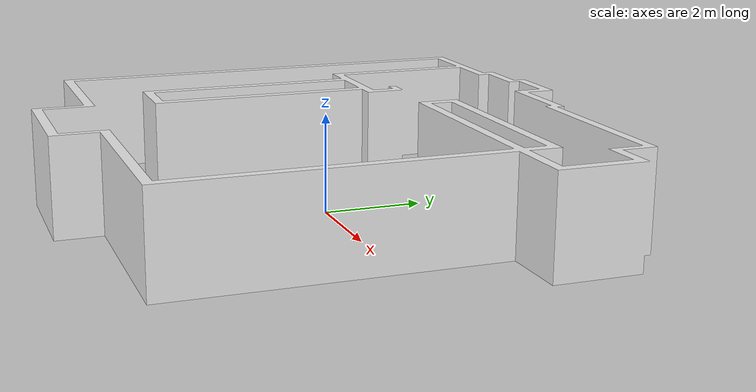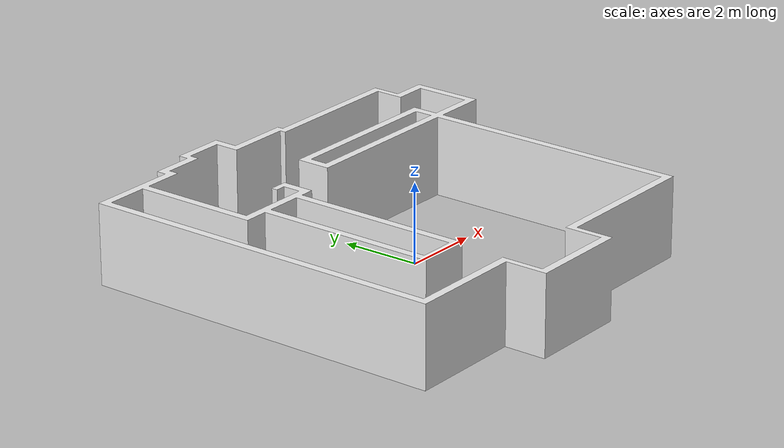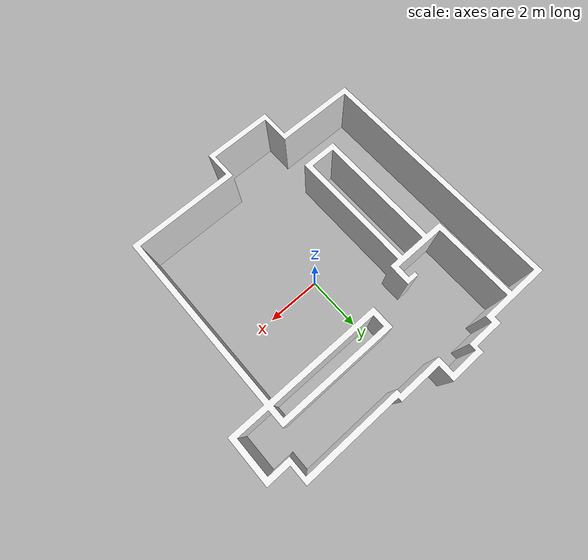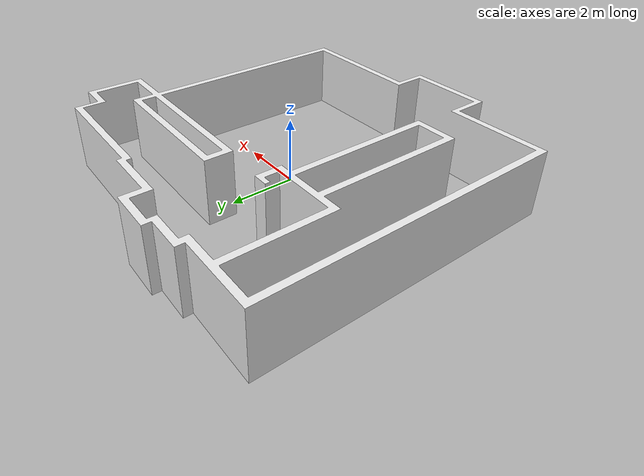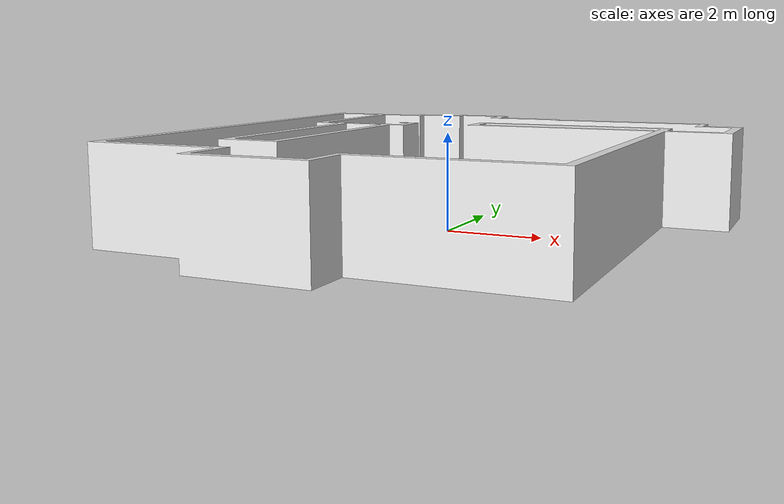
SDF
<?xml version="1.0"?>
<sdf version='1.5'>

  <model name='extruded_map'>
    <static>1</static>
      <link name='map_origin'>
        <collision name='map_walls'>
          <pose>0 0 0 0 0 0</pose>
            <geometry>
              <mesh>
                <uri>model://airlab/data/meshes/extruded_map.dae</uri>
              </mesh>
            </geometry>
          <max_contacts>10</max_contacts>
          <surface>
            <bounce/>
            <friction>
              <ode/>
            </friction>
            <contact>
              <ode/>
            </contact>
          </surface>
        </collision>

        <visual name='map_walls'>
          <pose>0 0 0 0 0 0</pose>
          <geometry>
            <mesh>
              <uri>model://airlab/data/meshes/extruded_map.dae</uri>
            </mesh>
          </geometry>
          <material>
            <script>
              <uri>file://media/materials/scripts/gazebo.material</uri>
              <name>Gazebo/White</name>
            </script>
          </material>
        </visual>

      </link>
  </model>

</sdf>
